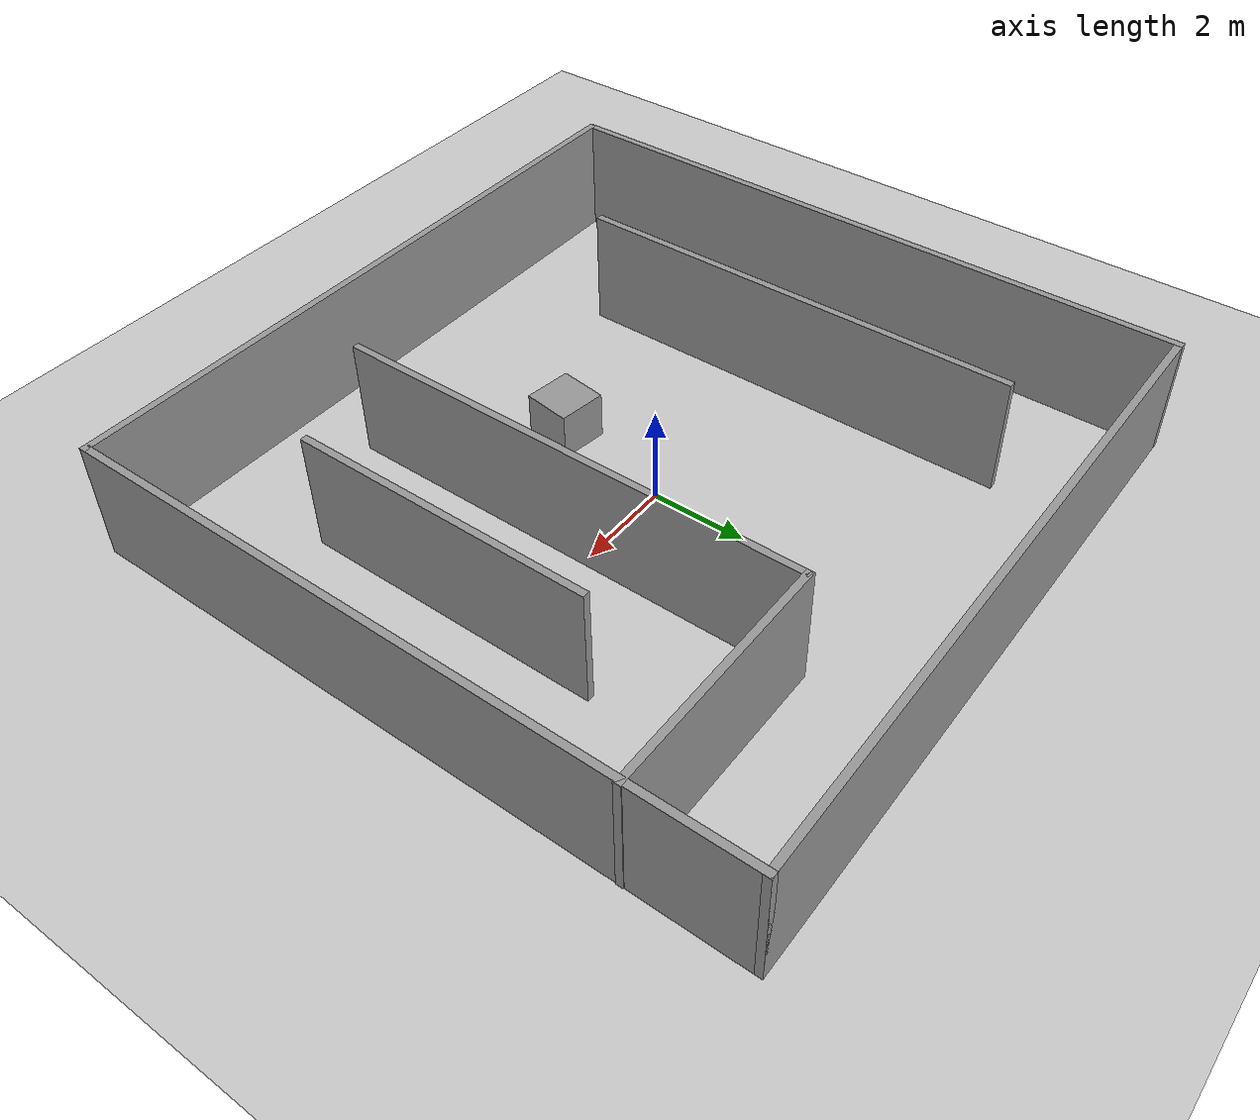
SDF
<sdf version="1.6">
 <world name="default">
  <light name="sun" type="directional">
   <pose>0 0 10 0 -0 0</pose>
   <diffuse>0.8 0.8 0.8 1</diffuse>
   <specular>0.1 0.1 0.1 1</specular>
   <attenuation>
    <range>1000</range>
    <constant>0.9</constant>
    <linear>0.01</linear>
    <quadratic>0.001</quadratic>
   </attenuation>
   <direction>-0.5 0.5 -1</direction>
  </light>
  <model name="ground_plane">
   <static>1</static>
   <link name="link">
    <collision name="collision">
     <geometry><plane><normal>0 0 1</normal><size>100 100</size></plane></geometry>
     <surface><friction><ode><mu>100</mu><mu2>50</mu2></ode></friction></surface>
    </collision>
    <visual name="visual">
     <cast_shadows>0</cast_shadows>
     <geometry><plane><normal>0 0 1</normal><size>100 100</size></plane></geometry>
     <material>
      <script><uri>file://media/materials/scripts/gazebo.material</uri><name>Gazebo/Grey</name></script>
     </material>
    </visual>
   </link>
  </model>
  <gravity>0 0 -9.8</gravity>
  <magnetic_field>6e-06 2.3e-05 -4.2e-05</magnetic_field>
  <atmosphere type="adiabatic"/>
  <physics name="default_physics" default="0" type="ode">
   <max_step_size>0.001</max_step_size>
   <real_time_factor>1</real_time_factor>
   <real_time_update_rate>1000</real_time_update_rate>
  </physics>
  <scene><ambient>0.4 0.4 0.4 1</ambient><background>0.7 0.7 0.7 1</background><shadows>1</shadows></scene>
  <spherical_coordinates>
   <surface_model>EARTH_WGS84</surface_model>
   <latitude_deg>0</latitude_deg>
   <longitude_deg>0</longitude_deg>
   <elevation>0</elevation>
   <heading_deg>0</heading_deg>
  </spherical_coordinates>
  <model name="LTL_WORLD_0">
   <pose>0.008 0 0 0 -0 0</pose>
   <link name="Wall_0">
    <collision name="Wall_0_Collision">
     <geometry><box><size>14.15 0.15 2.5</size></box></geometry>
     <pose>0 0 1.25 0 -0 0</pose>
    </collision>
    <visual name="Wall_0_Visual">
     <pose>0 0 1.25 0 -0 0</pose>
     <geometry><box><size>14.15 0.15 2.5</size></box></geometry>
     <material>
      <script><uri>file://media/materials/scripts/gazebo.material</uri><name>Gazebo/Grey</name></script>
      <ambient>1 1 1 1</ambient>
     </material>
    </visual>
    <pose>-0.008 7 0 0 -0 0</pose>
   </link>
   <link name="Wall_10">
    <collision name="Wall_10_Collision">
     <geometry><box><size>6.25 0.15 2.5</size></box></geometry>
     <pose>0 0 1.25 0 -0 0</pose>
    </collision>
    <visual name="Wall_10_Visual">
     <pose>0 0 1.25 0 -0 0</pose>
     <geometry><box><size>6.25 0.15 2.5</size></box></geometry>
     <material>
      <script><uri>file://media/materials/scripts/gazebo.material</uri><name>Gazebo/Grey</name></script>
      <ambient>1 1 1 1</ambient>
     </material>
    </visual>
    <pose>4.57658 -1.07207 0 0 0 -1.5708</pose>
   </link>
   <link name="Wall_12">
    <collision name="Wall_12_Collision">
     <geometry><box><size>5 0.15 2.5</size></box></geometry>
     <pose>0 0 1.25 0 -0 0</pose>
    </collision>
    <visual name="Wall_12_Visual">
     <pose>0 0 1.25 0 -0 0</pose>
     <geometry><box><size>5 0.15 2.5</size></box></geometry>
     <material>
      <script><uri>file://media/materials/scripts/gazebo.material</uri><name>Gazebo/Grey</name></script>
      <ambient>1 1 1 1</ambient>
     </material>
    </visual>
    <pose>4.583 4.56783 0 0 -0 3.14159</pose>
   </link>
   <link name="Wall_13">
    <collision name="Wall_13_Collision">
     <geometry><box><size>9.98562 0.15 2.5</size></box></geometry>
     <pose>0 0 1.25 0 -0 0</pose>
    </collision>
    <visual name="Wall_13_Visual">
     <pose>0 0 1.25 0 -0 0</pose>
     <geometry><box><size>9.98562 0.15 2.5</size></box></geometry>
     <material>
      <script><uri>file://media/materials/scripts/gazebo.material</uri><name>Gazebo/Grey</name></script>
      <ambient>1 1 1 1</ambient>
     </material>
    </visual>
    <pose>2.15792 -0.380567 0 0 0 -1.57081</pose>
   </link>
   <link name="Wall_2">
    <collision name="Wall_2_Collision">
     <geometry><box><size>14.15 0.15 2.5</size></box></geometry>
     <pose>0 0 1.25 0 -0 0</pose>
    </collision>
    <visual name="Wall_2_Visual">
     <pose>0 0 1.25 0 -0 0</pose>
     <geometry><box><size>14.15 0.15 2.5</size></box></geometry>
     <material>
      <script><uri>file://media/materials/scripts/gazebo.material</uri><name>Gazebo/Grey</name></script>
      <ambient>1 1 1 1</ambient>
     </material>
    </visual>
    <pose>-0.008 -7 0 0 -0 0</pose>
   </link>
   <link name="Wall_4">
    <collision name="Wall_4_Collision">
     <geometry><box><size>14.15 0.15 2.5</size></box></geometry>
     <pose>0 0 1.25 0 -0 0</pose>
    </collision>
    <visual name="Wall_4_Visual">
     <pose>0 0 1.25 0 -0 0</pose>
     <geometry><box><size>14.15 0.15 2.5</size></box></geometry>
     <material>
      <script><uri>file://media/materials/scripts/gazebo.material</uri><name>Gazebo/Grey</name></script>
      <ambient>1 1 1 1</ambient>
     </material>
    </visual>
    <pose>-7.008 0 0 0 0 -1.5708</pose>
   </link>
   <link name="Wall_6">
    <collision name="Wall_6_Collision">
     <geometry><box><size>14.15 0.15 2.5</size></box></geometry>
     <pose>0 0 1.25 0 -0 0</pose>
    </collision>
    <visual name="Wall_6_Visual">
     <pose>0 0 1.25 0 -0 0</pose>
     <geometry><box><size>14.15 0.15 2.5</size></box></geometry>
     <material>
      <script><uri>file://media/materials/scripts/gazebo.material</uri><name>Gazebo/Grey</name></script>
      <ambient>1 1 1 1</ambient>
     </material>
    </visual>
    <pose>6.992 0 0 0 -0 1.5708</pose>
   </link>
   <link name="Wall_8">
    <collision name="Wall_8_Collision">
     <geometry><box><size>9.5 0.15 2.5</size></box></geometry>
     <pose>0 0 1.25 0 -0 0</pose>
    </collision>
    <visual name="Wall_8_Visual">
     <pose>0 0 1.25 0 -0 0</pose>
     <geometry><box><size>9.5 0.15 2.5</size></box></geometry>
     <material>
      <script><uri>file://media/materials/scripts/gazebo.material</uri><name>Gazebo/Grey</name></script>
      <ambient>1 1 1 1</ambient>
     </material>
    </visual>
    <pose>-4.05518 0.27683 0 0 0 -1.5708</pose>
   </link>
   <static>1</static>
  </model>
  <model name="nocollision_unit_box_0">
   <link name="link">
    <inertial>
     <mass>1</mass>
     <inertia>
      <ixx>0.166667</ixx>
      <ixy>0</ixy>
      <ixz>0</ixz>
      <iyy>0.166667</iyy>
      <iyz>0</iyz>
      <izz>0.166667</izz>
     </inertia>
    </inertial>
    <visual name="visual">
     <geometry><box><size>1 1 1</size></box></geometry>
     <material>
      <script><name>Gazebo/Grey</name><uri>file://media/materials/scripts/gazebo.material</uri></script>
      <ambient>0.3 0.3 0.3 1</ambient>
      <diffuse>0.7 0.7 0.7 1</diffuse>
      <specular>0.01 0.01 0.01 1</specular>
      <emissive>0 0 0 1</emissive>
      <shader type="vertex"><normal_map>__default__</normal_map></shader>
     </material>
    </visual>
   </link>
   <static>0</static>
   <pose>-0.391299 -2.5011 0.500004 -9e-06 -0 -0.134249</pose>
  </model>
 </world>
</sdf>
